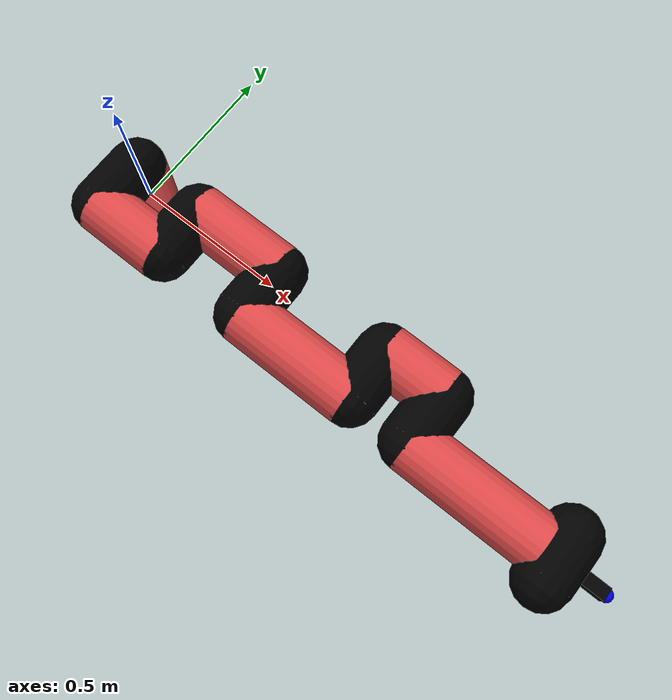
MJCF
<mujoco model="manipulator">
		<compiler angle="degree" coordinate="local" inertiafromgeom="auto" meshdir="meshes/"/>
		<option gravity="0 0 0" integrator="RK4" iterations="30" timestep="0.01"/>

		<default>
		<joint armature="1" limited="true" stiffness="10" damping="15" frictionloss="5.0"/>
		<geom conaffinity="1" condim="3" contype="1" friction=".5 .1 .1" margin="0.002"/>
		<motor ctrllimited="true"/>
		<position ctrllimited="true"/>
		</default>

		<asset>
		<texture builtin="gradient" height="100" rgb1="1.0 1.0 1.0" rgb2="1.0 1.0 1.0" type="skybox" width="100"/>
		<texture builtin="flat" height="32" name="arm_tex" rgb1="0.9 0.3 0.3" type="2d" width="32"/>
		<texture builtin="flat" height="32" name="gripper_tex" rgb1="0.0 0.0 0.0" type="cube" width="32"/>

		<material name="arm_mat" shininess="0.1" specular="0.1" texture="arm_tex"/>
		<material name="gripper_mat" shininess="1" specular="1" texture="gripper_tex"/>
		</asset>

		<worldbody>
		<light cutoff="45" diffuse=".8 .8 .8" dir="0 0.16 -1" directional="false" name="light" pos="0 -2.0 8.0" specular="0.3 0.3 0.3"/>

		<body name="base_link" pos="0 0 -0.1">
		<geom fromto="0 0 0 0 0 0.1" material="arm_mat" name="base_link" rgba="0.0 0.0 0.0 1" size="0.085" type="cylinder"/>
		</body>

		<body name="l1" pos="0 0 0">
<geom fromto="0 0 0 0 0 0.2" material="arm_mat" name="l1" rgba="0.9 0.3 0.3 1" size="0.085" type="cylinder"/>
<geom fromto="0 0 0.2 0 -0.16 0.2" material="arm_mat" name="l1_ex" rgba="0.0 0.0 0.0 1" size="0.085" type="capsule"/>
<joint axis="0 0 1" name="j1" pos="0 0 0" range="-90 90" damping="19.48" frictionloss="14.63"/>

<body name="l2" pos="0 -0.16 0.2">
<geom fromto="0 0 0 0.24 0 0" material="arm_mat" name="l2" rgba="0.9 0.3 0.3 1" size="0.085" type="cylinder"/>
<geom fromto="0.24 0 0 0.24 0.16 0" material="arm_mat" name="l2_ex" rgba="0.0 0.0 0.0 1" size="0.085" type="capsule"/>
<joint axis="0.0 1.0 0.0" name="j2" pos="0 0 0" range="-90 60" damping="41.9" frictionloss="10.28"/>

<body name="l3" pos="0.24 0.16 0">
<geom fromto="0 0 0 0.3 0 0" material="arm_mat" name="l3" rgba="0.9 0.3 0.3 1" size="0.085" type="cylinder"/>
<geom fromto="0.3 0 0 0.3 -0.16 0" material="arm_mat" name="l3_ex" rgba="0.0 0.0 0.0 1" size="0.085" type="capsule"/>
<joint axis="0.0 1.0 0.0" name="j3" pos="0 0 0" range="-30 60" damping="38.52" frictionloss="6.02"/>

<body name="l4" pos="0.3 -0.16 0">
<geom fromto="0 0 0 0.38 0 0" material="arm_mat" name="l4" rgba="0.9 0.3 0.3 1" size="0.085" type="cylinder"/>
<geom fromto="0.38 0 0 0.38 0.16 0" material="arm_mat" name="l4_ex" rgba="0.0 0.0 0.0 1" size="0.085" type="capsule"/>
<joint axis="0.0 1.0 0.0" name="j4" pos="0 0 0" range="-30 60" damping="41.34" frictionloss="7.24"/>

<body name="l5" pos="0.38 0.16 0">
<geom fromto="0 0 0 0.2 0 0" material="arm_mat" name="l5" rgba="0.9 0.3 0.3 1" size="0.085" type="cylinder"/>
<geom fromto="0.2 0 0 0.2 -0.16 0" material="arm_mat" name="l5_ex" rgba="0.0 0.0 0.0 1" size="0.085" type="capsule"/>
<joint axis="0.0 1.0 0.0" name="j5" pos="0 0 0" range="-30 60" damping="32.2" frictionloss="6.07"/>

<body name="l6" pos="0.2 -0.16 0">
<geom fromto="0 0 0 0.43 0 0" material="arm_mat" name="l6" rgba="0.9 0.3 0.3 1" size="0.085" type="cylinder"/>
<joint axis="0.0 1.0 0.0" name="j6" pos="0 0 0" range="-30 60" damping="23.87" frictionloss="6.67"/>

<body name="gripper" pos="0.43 0 0">
<geom fromto="0.05 -0.07 0 0.05 0.07 0" material="gripper_mat" name="gripper" rgba="0.0 0.0 0.0 1" size="0.085" type="capsule"/><joint axis="1 0 0" name="j7" pos="0 0 0" range="-90 90" damping="15" frictionloss="5.0"/><body name="finger" pos="0.1 0 0">
<geom fromto="0 0.0 0 0.1 0.0 0" material="gripper_mat" name="finger" rgba="0.0 0.0 0.0 1" size="0.020 0.06 0.06" type="box"/>
</body>
<site name="current" pos="0.2 0. 0.0" rgba="0. 0. 1.0 1" size="0.02" type="sphere"/>
</body>
</body>
</body>
</body>
</body>
</body>
</body>
</worldbody>
<actuator>
<motor ctrllimited="true" ctrlrange="-1.0 1.0" joint="j1" gear="57.83"/>
<motor ctrllimited="true" ctrlrange="-1.0 1.0" joint="j2" gear="67.35"/>
<motor ctrllimited="true" ctrlrange="-1.0 1.0" joint="j3" gear="94.69"/>
<motor ctrllimited="true" ctrlrange="-1.0 1.0" joint="j4" gear="90.53"/>
<motor ctrllimited="true" ctrlrange="-1.0 1.0" joint="j5" gear="107.82"/>
<motor ctrllimited="true" ctrlrange="-1.0 1.0" joint="j6" gear="124.52"/>
<motor ctrllimited="true" ctrlrange="-1.0 1.0" joint="j7" gear="80"/>
</actuator>
</mujoco>
